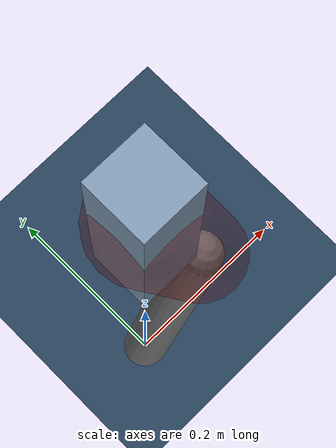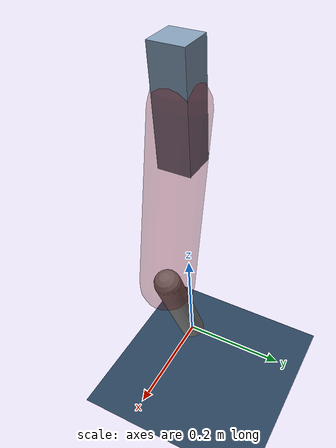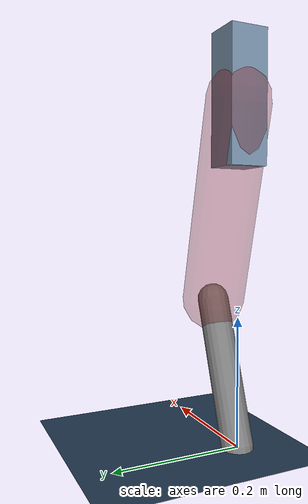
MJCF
<mujoco model="Hopper2D">
	<compiler inertiafromgeom="true" angle="radian" />
	<option timestep="0.001" integrator="implicit" cone="elliptic" solver="Newton" tolerance="1e-10" />

	<default>
		<geom contype="1" conaffinity="1" condim="3" friction="2 0.005 0.0001" solref="0.005 1" />
		<joint limited="true" damping="0.1" />
	</default>

	<asset>
		<texture name="skybox" type="skybox" builtin="gradient" rgb1=".4 .6 .8" rgb2="0 0 0" width="800" height="800" />
		<texture name="grid" type="2d" builtin="checker" rgb1=".1 .2 .3" rgb2=".2 .3 .4" width="300" height="300" mark="edge" markrgb=".2 .3 .4" />
		<material name="ground" texture="grid" texrepeat="1 1" texuniform="true" reflectance="0.1" />
		<material name="leg" rgba="0.5 0.6 0.7 1" />
	</asset>

	<worldbody>

		<geom name="floor" type="plane" size="5 5 0.25" material="ground" />

		<light directional="false" diffuse="0.8 0.8 0.8" specular="0.3 0.3 0.3" pos="0 0 2" dir="0 0 -1" />
		<light mode="targetbodycom" target="base" directional="false" diffuse="0.8 0.8 0.8" specular="0.3 0.3 0.3" pos="0 0 2" dir="0 0 -1" />

		<camera name="fixed" pos="0 -2 1" xyaxes="1 0 0 0 0 1" />
		<camera name="tracking" mode="trackcom" pos="0 -3 1" />

		<body name="root" pos="0 0 0.527263461867602">
			<joint name="slide_x" type="slide" axis="1 0 0" range="-100 100" />
			<joint name="slide_z" type="slide" axis="0 0 1" range="0 10" />

			<body name="base" pos="0 0 0">
				<geom name="torso" type="box" size="0.03 0.03 0.1" mass="2.472" material="leg" />

				<body name="link1" pos="0 0 0" euler="0 1.3219111431850705 0">
					<joint type="hinge" axis="0 -1 0" pos="0 0 0" name="hinge1" limited="true" range="-3.14 3.14" stiffness="0" damping="0.1" />
					<geom name="thigh" type="capsule" fromto="0 0 0 0.3175146429140668 0 0" size="0.05" rgba="0.5 0 0 0.3" mass="1.036441000159387" />

					<body name="link2" pos="0.3175146429140668 0 0" euler="0 0.5911292487264068 0">
						<joint type="hinge" axis="0 -1 0" pos="0 0 0" name="hinge2" limited="true" range="-3.14 3.14" stiffness="0" damping="0.1" />
						<geom name="shank" type="capsule" fromto="0 0 0 0.2330480710111878 0 0" size="0.025" mass="0.4285384568089502" />

					</body>
				</body>
			</body>
		</body>
	</worldbody>

	<actuator>
		<motor name="torque1" joint="hinge1" ctrlrange="-79.99952979923596 79.99952979923596" ctrllimited="true" gear="1" />
		<motor name="torque2" joint="hinge2" ctrlrange="-110.30249006231486 110.30249006231486" ctrllimited="true" gear="1" />
	</actuator>
</mujoco>
